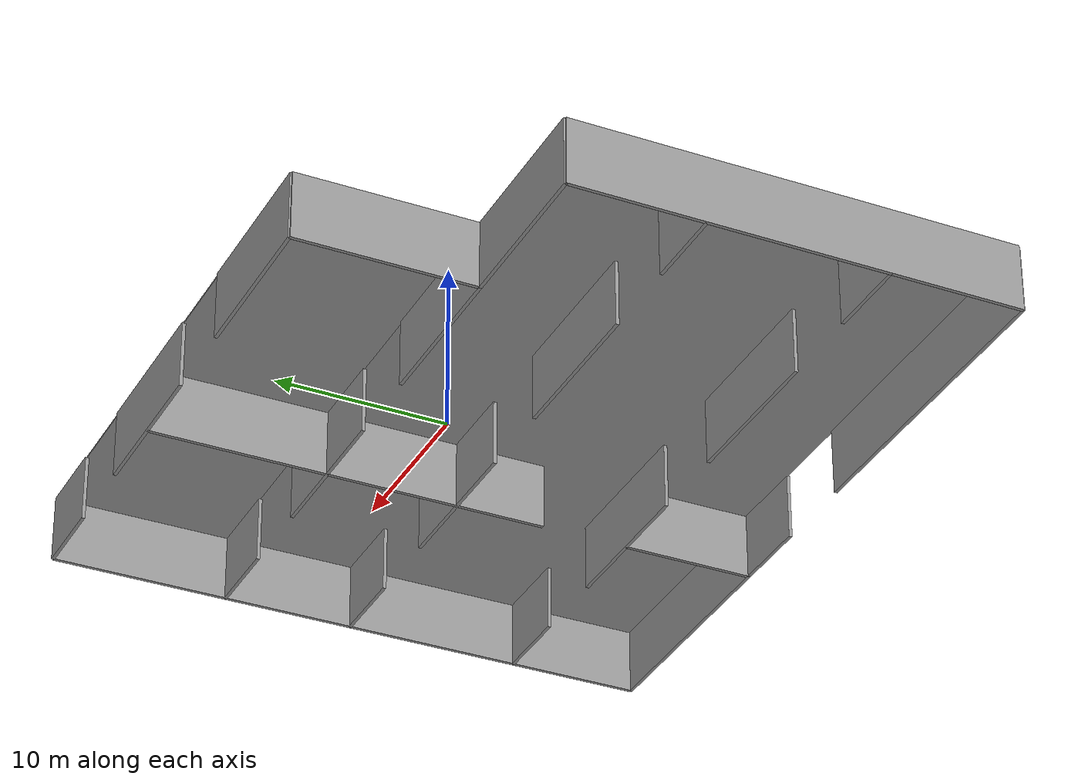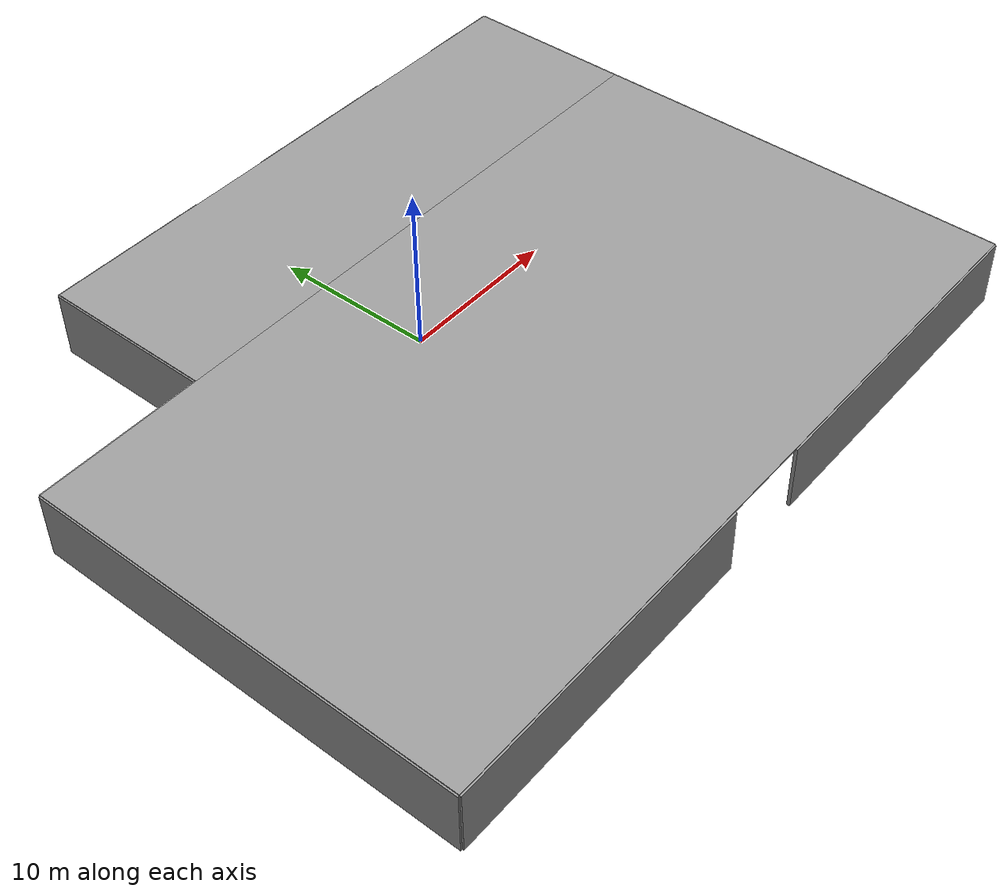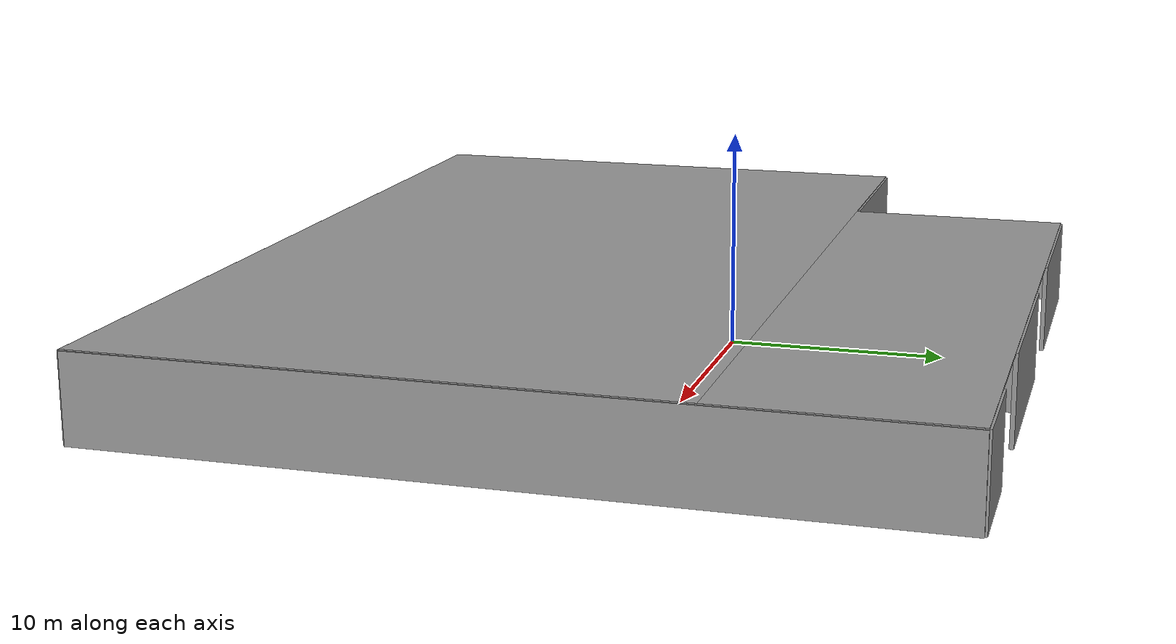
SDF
<?xml version='1.0'?>
<sdf version='1.7'>
  <model name='XiaoHongShanBuild'>
    <link name='link_1'>
      <inertial>
        <mass>1</mass>
        <inertia>
          <ixx>0.166667</ixx>
          <ixy>0</ixy>
          <ixz>0</ixz>
          <iyy>0.166667</iyy>
          <iyz>0</iyz>
          <izz>0.166667</izz>
        </inertia>
        <pose>0 0 0 0 -0 0</pose>
      </inertial>
      <pose>0 0 0 0 -0 0</pose>
      <gravity>1</gravity>
      <self_collide>0</self_collide>
      <kinematic>0</kinematic>
      <enable_wind>0</enable_wind>
      <visual name='ModelPreview_2::link_1::visual_2'>
        <pose>12.5 -22.3 2 0 -0 0</pose>
        <geometry>
          <box>
            <size>20 0.2 4</size>
          </box>
        </geometry>
        <material>
          <lighting>1</lighting>
          <script>
            <uri>file://media/materials/scripts/gazebo.material</uri>
            <name>Gazebo/Gray</name>
          </script>
          <shader type='pixel'>
            <normal_map>__default__</normal_map>
          </shader>
          <ambient>0.3 0.3 0.3 1</ambient>
          <diffuse>0.7 0.7 0.7 1</diffuse>
          <specular>0.01 0.01 0.01 1</specular>
          <emissive>0 0 0 1</emissive>
        </material>
        <transparency>0</transparency>
        <cast_shadows>1</cast_shadows>
      </visual>
      <visual name='ModelPreview_2::link_1::visual_1'>
        <pose>-22.5 -9.25 2 0 -0 0</pose>
        <geometry>
          <box>
            <size>0.2 26.1 4</size>
          </box>
        </geometry>
        <material>
          <lighting>1</lighting>
          <script>
            <uri>file://media/materials/scripts/gazebo.material</uri>
            <name>Gazebo/Gray</name>
          </script>
          <shader type='pixel'>
            <normal_map>__default__</normal_map>
          </shader>
          <ambient>0.3 0.3 0.3 1</ambient>
          <diffuse>0.7 0.7 0.7 1</diffuse>
          <specular>0.01 0.01 0.01 1</specular>
          <emissive>0 0 0 1</emissive>
        </material>
        <transparency>0</transparency>
        <cast_shadows>1</cast_shadows>
      </visual>
      <visual name='ModelPreview_2::link_1::visual_3'>
        <pose>22.5 -4 2 0 -0 0</pose>
        <geometry>
          <box>
            <size>0.2 36.6 4</size>
          </box>
        </geometry>
        <material>
          <lighting>1</lighting>
          <script>
            <uri>file://media/materials/scripts/gazebo.material</uri>
            <name>Gazebo/Gray</name>
          </script>
          <shader type='pixel'>
            <normal_map>__default__</normal_map>
          </shader>
          <ambient>0.3 0.3 0.3 1</ambient>
          <diffuse>0.7 0.7 0.7 1</diffuse>
          <specular>0.01 0.01 0.01 1</specular>
          <emissive>0 0 0 1</emissive>
        </material>
        <transparency>0</transparency>
        <cast_shadows>1</cast_shadows>
      </visual>
      <visual name='ModelPreview_2::link_1::visual_4'>
        <pose>-17.5 3.8 2 0 -0 0</pose>
        <geometry>
          <box>
            <size>10 0.2 4</size>
          </box>
        </geometry>
        <material>
          <lighting>1</lighting>
          <script>
            <uri>file://media/materials/scripts/gazebo.material</uri>
            <name>Gazebo/Gray</name>
          </script>
          <shader type='pixel'>
            <normal_map>__default__</normal_map>
          </shader>
          <ambient>0.3 0.3 0.3 1</ambient>
          <diffuse>0.7 0.7 0.7 1</diffuse>
          <specular>0.01 0.01 0.01 1</specular>
          <emissive>0 0 0 1</emissive>
        </material>
        <transparency>0</transparency>
        <cast_shadows>1</cast_shadows>
      </visual>
      <visual name='ModelPreview_2::link_1::visual_5'>
        <pose>-7.5 14.3 2 0 -0 0</pose>
        <geometry>
          <box>
            <size>10 0.2 4</size>
          </box>
        </geometry>
        <material>
          <lighting>1</lighting>
          <script>
            <uri>file://media/materials/scripts/gazebo.material</uri>
            <name>Gazebo/Gray</name>
          </script>
          <shader type='pixel'>
            <normal_map>__default__</normal_map>
          </shader>
          <ambient>0.3 0.3 0.3 1</ambient>
          <diffuse>0.7 0.7 0.7 1</diffuse>
          <specular>0.01 0.01 0.01 1</specular>
          <emissive>0 0 0 1</emissive>
        </material>
        <transparency>0</transparency>
        <cast_shadows>1</cast_shadows>
      </visual>
      <visual name='ModelPreview_2::link_1::visual_6'>
        <pose>7.5 14.3 2 0 -0 0</pose>
        <geometry>
          <box>
            <size>10 0.2 4</size>
          </box>
        </geometry>
        <material>
          <lighting>1</lighting>
          <script>
            <uri>file://media/materials/scripts/gazebo.material</uri>
            <name>Gazebo/Gray</name>
          </script>
          <shader type='pixel'>
            <normal_map>__default__</normal_map>
          </shader>
          <ambient>0.3 0.3 0.3 1</ambient>
          <diffuse>0.7 0.7 0.7 1</diffuse>
          <specular>0.01 0.01 0.01 1</specular>
          <emissive>0 0 0 1</emissive>
        </material>
        <transparency>0</transparency>
        <cast_shadows>1</cast_shadows>
      </visual>
      <visual name='ModelPreview_2::link_1::visual_7'>
        <pose>20 14.3 2 0 -0 0</pose>
        <geometry>
          <box>
            <size>5 0.2 4</size>
          </box>
        </geometry>
        <material>
          <lighting>1</lighting>
          <script>
            <uri>file://media/materials/scripts/gazebo.material</uri>
            <name>Gazebo/Gray</name>
          </script>
          <shader type='pixel'>
            <normal_map>__default__</normal_map>
          </shader>
          <ambient>0.3 0.3 0.3 1</ambient>
          <diffuse>0.7 0.7 0.7 1</diffuse>
          <specular>0.01 0.01 0.01 1</specular>
          <emissive>0 0 0 1</emissive>
        </material>
        <transparency>0</transparency>
        <cast_shadows>1</cast_shadows>
      </visual>
      <visual name='ModelPreview_2::link_1::visual_8'>
        <pose>-12.6 -22.3 2 0 -0 0</pose>
        <geometry>
          <box>
            <size>19.8 0.2 4</size>
          </box>
        </geometry>
        <material>
          <lighting>1</lighting>
          <script>
            <uri>file://media/materials/scripts/gazebo.material</uri>
            <name>Gazebo/Gray</name>
          </script>
          <shader type='pixel'>
            <normal_map>__default__</normal_map>
          </shader>
          <ambient>0.3 0.3 0.3 1</ambient>
          <diffuse>0.7 0.7 0.7 1</diffuse>
          <specular>0.01 0.01 0.01 1</specular>
          <emissive>0 0 0 1</emissive>
        </material>
        <transparency>0</transparency>
        <cast_shadows>1</cast_shadows>
      </visual>
      <visual name='ModelPreview_2::link_1::visual_9'>
        <pose>7.5 -18.4 2 0 -0 0</pose>
        <geometry>
          <box>
            <size>0.2 7.8 4</size>
          </box>
        </geometry>
        <material>
          <lighting>1</lighting>
          <script>
            <uri>file://media/materials/scripts/gazebo.material</uri>
            <name>Gazebo/Gray</name>
          </script>
          <shader type='pixel'>
            <normal_map>__default__</normal_map>
          </shader>
          <ambient>0.3 0.3 0.3 1</ambient>
          <diffuse>0.7 0.7 0.7 1</diffuse>
          <specular>0.01 0.01 0.01 1</specular>
          <emissive>0 0 0 1</emissive>
        </material>
        <transparency>0</transparency>
        <cast_shadows>1</cast_shadows>
      </visual>
      <visual name='ModelPreview_2::link_1::visual_10'>
        <pose>7.5 2.5 2 0 -0 0</pose>
        <geometry>
          <box>
            <size>0.2 23.6 4</size>
          </box>
        </geometry>
        <material>
          <lighting>1</lighting>
          <script>
            <uri>file://media/materials/scripts/gazebo.material</uri>
            <name>Gazebo/Gray</name>
          </script>
          <shader type='pixel'>
            <normal_map>__default__</normal_map>
          </shader>
          <ambient>0.3 0.3 0.3 1</ambient>
          <diffuse>0.7 0.7 0.7 1</diffuse>
          <specular>0.01 0.01 0.01 1</specular>
          <emissive>0 0 0 1</emissive>
        </material>
        <transparency>0</transparency>
        <cast_shadows>1</cast_shadows>
      </visual>
      <visual name='ModelPreview_2::link_1::visual_11'>
        <pose>-12.5 9.05 2 0 -0 0</pose>
        <geometry>
          <box>
            <size>0.2 10.5 4</size>
          </box>
        </geometry>
        <material>
          <lighting>1</lighting>
          <script>
            <uri>file://media/materials/scripts/gazebo.material</uri>
            <name>Gazebo/Gray</name>
          </script>
          <shader type='pixel'>
            <normal_map>__default__</normal_map>
          </shader>
          <ambient>0.3 0.3 0.3 1</ambient>
          <diffuse>0.7 0.7 0.7 1</diffuse>
          <specular>0.01 0.01 0.01 1</specular>
          <emissive>0 0 0 1</emissive>
        </material>
        <transparency>0</transparency>
        <cast_shadows>1</cast_shadows>
      </visual>
      <visual name='ModelPreview_2::link_1::visual_12'>
        <pose>20 -4 2 0 -0 0</pose>
        <geometry>
          <box>
            <size>5 0.2 4</size>
          </box>
        </geometry>
        <material>
          <lighting>1</lighting>
          <script>
            <uri>file://media/materials/scripts/gazebo.material</uri>
            <name>Gazebo/Gray</name>
          </script>
          <shader type='pixel'>
            <normal_map>__default__</normal_map>
          </shader>
          <ambient>0.3 0.3 0.3 1</ambient>
          <diffuse>0.7 0.7 0.7 1</diffuse>
          <specular>0.01 0.01 0.01 1</specular>
          <emissive>0 0 0 1</emissive>
        </material>
        <transparency>0</transparency>
        <cast_shadows>1</cast_shadows>
      </visual>
      <visual name='ModelPreview_2::link_1::visual_13'>
        <pose>20 -14.5 2 0 -0 0</pose>
        <geometry>
          <box>
            <size>5 0.2 4</size>
          </box>
        </geometry>
        <material>
          <lighting>1</lighting>
          <script>
            <uri>file://media/materials/scripts/gazebo.material</uri>
            <name>Gazebo/Gray</name>
          </script>
          <shader type='pixel'>
            <normal_map>__default__</normal_map>
          </shader>
          <ambient>0.3 0.3 0.3 1</ambient>
          <diffuse>0.7 0.7 0.7 1</diffuse>
          <specular>0.01 0.01 0.01 1</specular>
          <emissive>0 0 0 1</emissive>
        </material>
        <transparency>0</transparency>
        <cast_shadows>1</cast_shadows>
      </visual>
      <visual name='ModelPreview_2::link_1::visual_14'>
        <pose>7.5 3.8 2 0 -0 0</pose>
        <geometry>
          <box>
            <size>10 0.2 4</size>
          </box>
        </geometry>
        <material>
          <lighting>1</lighting>
          <script>
            <uri>file://media/materials/scripts/gazebo.material</uri>
            <name>Gazebo/Gray</name>
          </script>
          <shader type='pixel'>
            <normal_map>__default__</normal_map>
          </shader>
          <ambient>0.3 0.3 0.3 1</ambient>
          <diffuse>0.7 0.7 0.7 1</diffuse>
          <specular>0.01 0.01 0.01 1</specular>
          <emissive>0 0 0 1</emissive>
        </material>
        <transparency>0</transparency>
        <cast_shadows>1</cast_shadows>
      </visual>
      <visual name='ModelPreview_2::link_1::visual_15'>
        <pose>7.5 -4 2 0 -0 0</pose>
        <geometry>
          <box>
            <size>10 0.2 4</size>
          </box>
        </geometry>
        <material>
          <lighting>1</lighting>
          <script>
            <uri>file://media/materials/scripts/gazebo.material</uri>
            <name>Gazebo/Gray</name>
          </script>
          <shader type='pixel'>
            <normal_map>__default__</normal_map>
          </shader>
          <ambient>0.3 0.3 0.3 1</ambient>
          <diffuse>0.7 0.7 0.7 1</diffuse>
          <specular>0.01 0.01 0.01 1</specular>
          <emissive>0 0 0 1</emissive>
        </material>
        <transparency>0</transparency>
        <cast_shadows>1</cast_shadows>
      </visual>
      <visual name='ModelPreview_2::link_1::visual_16'>
        <pose>-7.5 3.8 2 0 -0 0</pose>
        <geometry>
          <box>
            <size>10 0.2 4</size>
          </box>
        </geometry>
        <material>
          <lighting>1</lighting>
          <script>
            <uri>file://media/materials/scripts/gazebo.material</uri>
            <name>Gazebo/Gray</name>
          </script>
          <shader type='pixel'>
            <normal_map>__default__</normal_map>
          </shader>
          <ambient>0.3 0.3 0.3 1</ambient>
          <diffuse>0.7 0.7 0.7 1</diffuse>
          <specular>0.01 0.01 0.01 1</specular>
          <emissive>0 0 0 1</emissive>
        </material>
        <transparency>0</transparency>
        <cast_shadows>1</cast_shadows>
      </visual>
      <visual name='ModelPreview_2::link_1::visual_17'>
        <pose>-20 -4 2 0 -0 0</pose>
        <geometry>
          <box>
            <size>5 0.2 4</size>
          </box>
        </geometry>
        <material>
          <lighting>1</lighting>
          <script>
            <uri>file://media/materials/scripts/gazebo.material</uri>
            <name>Gazebo/Gray</name>
          </script>
          <shader type='pixel'>
            <normal_map>__default__</normal_map>
          </shader>
          <ambient>0.3 0.3 0.3 1</ambient>
          <diffuse>0.7 0.7 0.7 1</diffuse>
          <specular>0.01 0.01 0.01 1</specular>
          <emissive>0 0 0 1</emissive>
        </material>
        <transparency>0</transparency>
        <cast_shadows>1</cast_shadows>
      </visual>
      <visual name='ModelPreview_2::link_1::visual_18'>
        <pose>-20 -14.5 2 0 -0 0</pose>
        <geometry>
          <box>
            <size>5 0.2 4</size>
          </box>
        </geometry>
        <material>
          <lighting>1</lighting>
          <script>
            <uri>file://media/materials/scripts/gazebo.material</uri>
            <name>Gazebo/Gray</name>
          </script>
          <shader type='pixel'>
            <normal_map>__default__</normal_map>
          </shader>
          <ambient>0.3 0.3 0.3 1</ambient>
          <diffuse>0.7 0.7 0.7 1</diffuse>
          <specular>0.01 0.01 0.01 1</specular>
          <emissive>0 0 0 1</emissive>
        </material>
        <transparency>0</transparency>
        <cast_shadows>1</cast_shadows>
      </visual>
      <visual name='ModelPreview_2::link_1::visual_19'>
        <pose>-7.5 -14.5 2 0 -0 0</pose>
        <geometry>
          <box>
            <size>10 0.2 4</size>
          </box>
        </geometry>
        <material>
          <lighting>1</lighting>
          <script>
            <uri>file://media/materials/scripts/gazebo.material</uri>
            <name>Gazebo/Gray</name>
          </script>
          <shader type='pixel'>
            <normal_map>__default__</normal_map>
          </shader>
          <ambient>0.3 0.3 0.3 1</ambient>
          <diffuse>0.7 0.7 0.7 1</diffuse>
          <specular>0.01 0.01 0.01 1</specular>
          <emissive>0 0 0 1</emissive>
        </material>
        <transparency>0</transparency>
        <cast_shadows>1</cast_shadows>
      </visual>
      <visual name='ModelPreview_2::link_1::visual_20'>
        <pose>-7.5 -4 2 0 -0 0</pose>
        <geometry>
          <box>
            <size>10 0.2 4</size>
          </box>
        </geometry>
        <material>
          <lighting>1</lighting>
          <script>
            <uri>file://media/materials/scripts/gazebo.material</uri>
            <name>Gazebo/Gray</name>
          </script>
          <shader type='pixel'>
            <normal_map>__default__</normal_map>
          </shader>
          <ambient>0.3 0.3 0.3 1</ambient>
          <diffuse>0.7 0.7 0.7 1</diffuse>
          <specular>0.01 0.01 0.01 1</specular>
          <emissive>0 0 0 1</emissive>
        </material>
        <transparency>0</transparency>
        <cast_shadows>1</cast_shadows>
      </visual>
      <visual name='ModelPreview_2::link_1::visual_23'>
        <pose>5 9.05 4 0 -0 0</pose>
        <geometry>
          <box>
            <size>35 10.5 0.1</size>
          </box>
        </geometry>
        <material>
          <lighting>1</lighting>
          <script>
            <uri>file://media/materials/scripts/gazebo.material</uri>
            <name>Gazebo/Gray</name>
          </script>
          <shader type='pixel'>
            <normal_map>__default__</normal_map>
          </shader>
          <ambient>0.3 0.3 0.3 1</ambient>
          <diffuse>0.7 0.7 0.7 1</diffuse>
          <specular>0.01 0.01 0.01 1</specular>
          <emissive>0 0 0 1</emissive>
        </material>
        <transparency>0</transparency>
        <cast_shadows>1</cast_shadows>
      </visual>
      <visual name='ModelPreview_2::link_1::visual_21'>
        <pose>7.5 -14.5 2 0 -0 0</pose>
        <geometry>
          <box>
            <size>10 0.2 4</size>
          </box>
        </geometry>
        <material>
          <lighting>1</lighting>
          <script>
            <uri>file://media/materials/scripts/gazebo.material</uri>
            <name>Gazebo/Gray</name>
          </script>
          <shader type='pixel'>
            <normal_map>__default__</normal_map>
          </shader>
          <ambient>0.3 0.3 0.3 1</ambient>
          <diffuse>0.7 0.7 0.7 1</diffuse>
          <specular>0.01 0.01 0.01 1</specular>
          <emissive>0 0 0 1</emissive>
        </material>
        <transparency>0</transparency>
        <cast_shadows>1</cast_shadows>
      </visual>
      <visual name='ModelPreview_2::link_1::visual_22'>
        <pose>0 -9.25 4 0 -0 0</pose>
        <geometry>
          <box>
            <size>45 26.1 0.1</size>
          </box>
        </geometry>
        <material>
          <lighting>1</lighting>
          <script>
            <uri>file://media/materials/scripts/gazebo.material</uri>
            <name>Gazebo/Gray</name>
          </script>
          <shader type='pixel'>
            <normal_map>__default__</normal_map>
          </shader>
          <ambient>0.3 0.3 0.3 1</ambient>
          <diffuse>0.7 0.7 0.7 1</diffuse>
          <specular>0.01 0.01 0.01 1</specular>
          <emissive>0 0 0 1</emissive>
        </material>
        <transparency>0</transparency>
        <cast_shadows>1</cast_shadows>
      </visual>
      <visual name='visual'>
        <pose>20 3.8 2 0 -0 0</pose>
        <geometry>
          <box>
            <size>5 0.2 4</size>
          </box>
        </geometry>
        <material>
          <lighting>1</lighting>
          <script>
            <uri>file://media/materials/scripts/gazebo.material</uri>
            <name>Gazebo/Gray</name>
          </script>
          <shader type='pixel'>
            <normal_map>__default__</normal_map>
          </shader>
          <ambient>0.3 0.3 0.3 1</ambient>
          <diffuse>0.7 0.7 0.7 1</diffuse>
          <specular>0.01 0.01 0.01 1</specular>
          <emissive>0 0 0 1</emissive>
        </material>
        <transparency>0</transparency>
        <cast_shadows>1</cast_shadows>
      </visual>
      <collision name='collision_23'>
        <laser_retro>0</laser_retro>
        <max_contacts>10</max_contacts>
        <pose>5 9.05 4 0 -0 0</pose>
        <geometry>
          <box>
            <size>35 10.5 0.1</size>
          </box>
        </geometry>
        <surface>
          <friction>
            <ode>
              <mu>1</mu>
              <mu2>1</mu2>
              <fdir1>0 0 0</fdir1>
              <slip1>0</slip1>
              <slip2>0</slip2>
            </ode>
            <torsional>
              <coefficient>1</coefficient>
              <patch_radius>0</patch_radius>
              <surface_radius>0</surface_radius>
              <use_patch_radius>1</use_patch_radius>
              <ode>
                <slip>0</slip>
              </ode>
            </torsional>
          </friction>
          <bounce>
            <restitution_coefficient>0</restitution_coefficient>
            <threshold>1e+06</threshold>
          </bounce>
          <contact>
            <collide_without_contact>0</collide_without_contact>
            <collide_without_contact_bitmask>1</collide_without_contact_bitmask>
            <collide_bitmask>1</collide_bitmask>
            <ode>
              <soft_cfm>0</soft_cfm>
              <soft_erp>0.2</soft_erp>
              <kp>1e+13</kp>
              <kd>1</kd>
              <max_vel>0.01</max_vel>
              <min_depth>0</min_depth>
            </ode>
            <bullet>
              <split_impulse>1</split_impulse>
              <split_impulse_penetration_threshold>-0.01</split_impulse_penetration_threshold>
              <soft_cfm>0</soft_cfm>
              <soft_erp>0.2</soft_erp>
              <kp>1e+13</kp>
              <kd>1</kd>
            </bullet>
          </contact>
        </surface>
      </collision>
      <collision name='collision_1'>
        <laser_retro>0</laser_retro>
        <max_contacts>10</max_contacts>
        <pose>-22.5 -9.25 2 0 -0 0</pose>
        <geometry>
          <box>
            <size>0.2 26.1 4</size>
          </box>
        </geometry>
        <surface>
          <friction>
            <ode>
              <mu>1</mu>
              <mu2>1</mu2>
              <fdir1>0 0 0</fdir1>
              <slip1>0</slip1>
              <slip2>0</slip2>
            </ode>
            <torsional>
              <coefficient>1</coefficient>
              <patch_radius>0</patch_radius>
              <surface_radius>0</surface_radius>
              <use_patch_radius>1</use_patch_radius>
              <ode>
                <slip>0</slip>
              </ode>
            </torsional>
          </friction>
          <bounce>
            <restitution_coefficient>0</restitution_coefficient>
            <threshold>1e+06</threshold>
          </bounce>
          <contact>
            <collide_without_contact>0</collide_without_contact>
            <collide_without_contact_bitmask>1</collide_without_contact_bitmask>
            <collide_bitmask>1</collide_bitmask>
            <ode>
              <soft_cfm>0</soft_cfm>
              <soft_erp>0.2</soft_erp>
              <kp>1e+13</kp>
              <kd>1</kd>
              <max_vel>0.01</max_vel>
              <min_depth>0</min_depth>
            </ode>
            <bullet>
              <split_impulse>1</split_impulse>
              <split_impulse_penetration_threshold>-0.01</split_impulse_penetration_threshold>
              <soft_cfm>0</soft_cfm>
              <soft_erp>0.2</soft_erp>
              <kp>1e+13</kp>
              <kd>1</kd>
            </bullet>
          </contact>
        </surface>
      </collision>
      <collision name='collision_4'>
        <laser_retro>0</laser_retro>
        <max_contacts>10</max_contacts>
        <pose>-17.5 3.8 2 0 -0 0</pose>
        <geometry>
          <box>
            <size>10 0.2 4</size>
          </box>
        </geometry>
        <surface>
          <friction>
            <ode>
              <mu>1</mu>
              <mu2>1</mu2>
              <fdir1>0 0 0</fdir1>
              <slip1>0</slip1>
              <slip2>0</slip2>
            </ode>
            <torsional>
              <coefficient>1</coefficient>
              <patch_radius>0</patch_radius>
              <surface_radius>0</surface_radius>
              <use_patch_radius>1</use_patch_radius>
              <ode>
                <slip>0</slip>
              </ode>
            </torsional>
          </friction>
          <bounce>
            <restitution_coefficient>0</restitution_coefficient>
            <threshold>1e+06</threshold>
          </bounce>
          <contact>
            <collide_without_contact>0</collide_without_contact>
            <collide_without_contact_bitmask>1</collide_without_contact_bitmask>
            <collide_bitmask>1</collide_bitmask>
            <ode>
              <soft_cfm>0</soft_cfm>
              <soft_erp>0.2</soft_erp>
              <kp>1e+13</kp>
              <kd>1</kd>
              <max_vel>0.01</max_vel>
              <min_depth>0</min_depth>
            </ode>
            <bullet>
              <split_impulse>1</split_impulse>
              <split_impulse_penetration_threshold>-0.01</split_impulse_penetration_threshold>
              <soft_cfm>0</soft_cfm>
              <soft_erp>0.2</soft_erp>
              <kp>1e+13</kp>
              <kd>1</kd>
            </bullet>
          </contact>
        </surface>
      </collision>
      <collision name='collision_5'>
        <laser_retro>0</laser_retro>
        <max_contacts>10</max_contacts>
        <pose>-7.5 14.3 2 0 -0 0</pose>
        <geometry>
          <box>
            <size>10 0.2 4</size>
          </box>
        </geometry>
        <surface>
          <friction>
            <ode>
              <mu>1</mu>
              <mu2>1</mu2>
              <fdir1>0 0 0</fdir1>
              <slip1>0</slip1>
              <slip2>0</slip2>
            </ode>
            <torsional>
              <coefficient>1</coefficient>
              <patch_radius>0</patch_radius>
              <surface_radius>0</surface_radius>
              <use_patch_radius>1</use_patch_radius>
              <ode>
                <slip>0</slip>
              </ode>
            </torsional>
          </friction>
          <bounce>
            <restitution_coefficient>0</restitution_coefficient>
            <threshold>1e+06</threshold>
          </bounce>
          <contact>
            <collide_without_contact>0</collide_without_contact>
            <collide_without_contact_bitmask>1</collide_without_contact_bitmask>
            <collide_bitmask>1</collide_bitmask>
            <ode>
              <soft_cfm>0</soft_cfm>
              <soft_erp>0.2</soft_erp>
              <kp>1e+13</kp>
              <kd>1</kd>
              <max_vel>0.01</max_vel>
              <min_depth>0</min_depth>
            </ode>
            <bullet>
              <split_impulse>1</split_impulse>
              <split_impulse_penetration_threshold>-0.01</split_impulse_penetration_threshold>
              <soft_cfm>0</soft_cfm>
              <soft_erp>0.2</soft_erp>
              <kp>1e+13</kp>
              <kd>1</kd>
            </bullet>
          </contact>
        </surface>
      </collision>
      <collision name='collision_2'>
        <laser_retro>0</laser_retro>
        <max_contacts>10</max_contacts>
        <pose>12.5 -22.3 2 0 -0 0</pose>
        <geometry>
          <box>
            <size>20 0.2 4</size>
          </box>
        </geometry>
        <surface>
          <friction>
            <ode>
              <mu>1</mu>
              <mu2>1</mu2>
              <fdir1>0 0 0</fdir1>
              <slip1>0</slip1>
              <slip2>0</slip2>
            </ode>
            <torsional>
              <coefficient>1</coefficient>
              <patch_radius>0</patch_radius>
              <surface_radius>0</surface_radius>
              <use_patch_radius>1</use_patch_radius>
              <ode>
                <slip>0</slip>
              </ode>
            </torsional>
          </friction>
          <bounce>
            <restitution_coefficient>0</restitution_coefficient>
            <threshold>1e+06</threshold>
          </bounce>
          <contact>
            <collide_without_contact>0</collide_without_contact>
            <collide_without_contact_bitmask>1</collide_without_contact_bitmask>
            <collide_bitmask>1</collide_bitmask>
            <ode>
              <soft_cfm>0</soft_cfm>
              <soft_erp>0.2</soft_erp>
              <kp>1e+13</kp>
              <kd>1</kd>
              <max_vel>0.01</max_vel>
              <min_depth>0</min_depth>
            </ode>
            <bullet>
              <split_impulse>1</split_impulse>
              <split_impulse_penetration_threshold>-0.01</split_impulse_penetration_threshold>
              <soft_cfm>0</soft_cfm>
              <soft_erp>0.2</soft_erp>
              <kp>1e+13</kp>
              <kd>1</kd>
            </bullet>
          </contact>
        </surface>
      </collision>
      <collision name='collision_3'>
        <laser_retro>0</laser_retro>
        <max_contacts>10</max_contacts>
        <pose>22.5 -4 2 0 -0 0</pose>
        <geometry>
          <box>
            <size>0.2 36.6 4</size>
          </box>
        </geometry>
        <surface>
          <friction>
            <ode>
              <mu>1</mu>
              <mu2>1</mu2>
              <fdir1>0 0 0</fdir1>
              <slip1>0</slip1>
              <slip2>0</slip2>
            </ode>
            <torsional>
              <coefficient>1</coefficient>
              <patch_radius>0</patch_radius>
              <surface_radius>0</surface_radius>
              <use_patch_radius>1</use_patch_radius>
              <ode>
                <slip>0</slip>
              </ode>
            </torsional>
          </friction>
          <bounce>
            <restitution_coefficient>0</restitution_coefficient>
            <threshold>1e+06</threshold>
          </bounce>
          <contact>
            <collide_without_contact>0</collide_without_contact>
            <collide_without_contact_bitmask>1</collide_without_contact_bitmask>
            <collide_bitmask>1</collide_bitmask>
            <ode>
              <soft_cfm>0</soft_cfm>
              <soft_erp>0.2</soft_erp>
              <kp>1e+13</kp>
              <kd>1</kd>
              <max_vel>0.01</max_vel>
              <min_depth>0</min_depth>
            </ode>
            <bullet>
              <split_impulse>1</split_impulse>
              <split_impulse_penetration_threshold>-0.01</split_impulse_penetration_threshold>
              <soft_cfm>0</soft_cfm>
              <soft_erp>0.2</soft_erp>
              <kp>1e+13</kp>
              <kd>1</kd>
            </bullet>
          </contact>
        </surface>
      </collision>
      <collision name='collision_7'>
        <laser_retro>0</laser_retro>
        <max_contacts>10</max_contacts>
        <pose>20 14.3 2 0 -0 0</pose>
        <geometry>
          <box>
            <size>5 0.2 4</size>
          </box>
        </geometry>
        <surface>
          <friction>
            <ode>
              <mu>1</mu>
              <mu2>1</mu2>
              <fdir1>0 0 0</fdir1>
              <slip1>0</slip1>
              <slip2>0</slip2>
            </ode>
            <torsional>
              <coefficient>1</coefficient>
              <patch_radius>0</patch_radius>
              <surface_radius>0</surface_radius>
              <use_patch_radius>1</use_patch_radius>
              <ode>
                <slip>0</slip>
              </ode>
            </torsional>
          </friction>
          <bounce>
            <restitution_coefficient>0</restitution_coefficient>
            <threshold>1e+06</threshold>
          </bounce>
          <contact>
            <collide_without_contact>0</collide_without_contact>
            <collide_without_contact_bitmask>1</collide_without_contact_bitmask>
            <collide_bitmask>1</collide_bitmask>
            <ode>
              <soft_cfm>0</soft_cfm>
              <soft_erp>0.2</soft_erp>
              <kp>1e+13</kp>
              <kd>1</kd>
              <max_vel>0.01</max_vel>
              <min_depth>0</min_depth>
            </ode>
            <bullet>
              <split_impulse>1</split_impulse>
              <split_impulse_penetration_threshold>-0.01</split_impulse_penetration_threshold>
              <soft_cfm>0</soft_cfm>
              <soft_erp>0.2</soft_erp>
              <kp>1e+13</kp>
              <kd>1</kd>
            </bullet>
          </contact>
        </surface>
      </collision>
      <collision name='collision_8'>
        <laser_retro>0</laser_retro>
        <max_contacts>10</max_contacts>
        <pose>-12.6 -22.3 2 0 -0 0</pose>
        <geometry>
          <box>
            <size>19.8 0.2 4</size>
          </box>
        </geometry>
        <surface>
          <friction>
            <ode>
              <mu>1</mu>
              <mu2>1</mu2>
              <fdir1>0 0 0</fdir1>
              <slip1>0</slip1>
              <slip2>0</slip2>
            </ode>
            <torsional>
              <coefficient>1</coefficient>
              <patch_radius>0</patch_radius>
              <surface_radius>0</surface_radius>
              <use_patch_radius>1</use_patch_radius>
              <ode>
                <slip>0</slip>
              </ode>
            </torsional>
          </friction>
          <bounce>
            <restitution_coefficient>0</restitution_coefficient>
            <threshold>1e+06</threshold>
          </bounce>
          <contact>
            <collide_without_contact>0</collide_without_contact>
            <collide_without_contact_bitmask>1</collide_without_contact_bitmask>
            <collide_bitmask>1</collide_bitmask>
            <ode>
              <soft_cfm>0</soft_cfm>
              <soft_erp>0.2</soft_erp>
              <kp>1e+13</kp>
              <kd>1</kd>
              <max_vel>0.01</max_vel>
              <min_depth>0</min_depth>
            </ode>
            <bullet>
              <split_impulse>1</split_impulse>
              <split_impulse_penetration_threshold>-0.01</split_impulse_penetration_threshold>
              <soft_cfm>0</soft_cfm>
              <soft_erp>0.2</soft_erp>
              <kp>1e+13</kp>
              <kd>1</kd>
            </bullet>
          </contact>
        </surface>
      </collision>
      <collision name='collision_6'>
        <laser_retro>0</laser_retro>
        <max_contacts>10</max_contacts>
        <pose>7.5 14.3 2 0 -0 0</pose>
        <geometry>
          <box>
            <size>10 0.2 4</size>
          </box>
        </geometry>
        <surface>
          <friction>
            <ode>
              <mu>1</mu>
              <mu2>1</mu2>
              <fdir1>0 0 0</fdir1>
              <slip1>0</slip1>
              <slip2>0</slip2>
            </ode>
            <torsional>
              <coefficient>1</coefficient>
              <patch_radius>0</patch_radius>
              <surface_radius>0</surface_radius>
              <use_patch_radius>1</use_patch_radius>
              <ode>
                <slip>0</slip>
              </ode>
            </torsional>
          </friction>
          <bounce>
            <restitution_coefficient>0</restitution_coefficient>
            <threshold>1e+06</threshold>
          </bounce>
          <contact>
            <collide_without_contact>0</collide_without_contact>
            <collide_without_contact_bitmask>1</collide_without_contact_bitmask>
            <collide_bitmask>1</collide_bitmask>
            <ode>
              <soft_cfm>0</soft_cfm>
              <soft_erp>0.2</soft_erp>
              <kp>1e+13</kp>
              <kd>1</kd>
              <max_vel>0.01</max_vel>
              <min_depth>0</min_depth>
            </ode>
            <bullet>
              <split_impulse>1</split_impulse>
              <split_impulse_penetration_threshold>-0.01</split_impulse_penetration_threshold>
              <soft_cfm>0</soft_cfm>
              <soft_erp>0.2</soft_erp>
              <kp>1e+13</kp>
              <kd>1</kd>
            </bullet>
          </contact>
        </surface>
      </collision>
      <collision name='collision_10'>
        <laser_retro>0</laser_retro>
        <max_contacts>10</max_contacts>
        <pose>7.5 2.5 2 0 -0 0</pose>
        <geometry>
          <box>
            <size>0.2 23.6 4</size>
          </box>
        </geometry>
        <surface>
          <friction>
            <ode>
              <mu>1</mu>
              <mu2>1</mu2>
              <fdir1>0 0 0</fdir1>
              <slip1>0</slip1>
              <slip2>0</slip2>
            </ode>
            <torsional>
              <coefficient>1</coefficient>
              <patch_radius>0</patch_radius>
              <surface_radius>0</surface_radius>
              <use_patch_radius>1</use_patch_radius>
              <ode>
                <slip>0</slip>
              </ode>
            </torsional>
          </friction>
          <bounce>
            <restitution_coefficient>0</restitution_coefficient>
            <threshold>1e+06</threshold>
          </bounce>
          <contact>
            <collide_without_contact>0</collide_without_contact>
            <collide_without_contact_bitmask>1</collide_without_contact_bitmask>
            <collide_bitmask>1</collide_bitmask>
            <ode>
              <soft_cfm>0</soft_cfm>
              <soft_erp>0.2</soft_erp>
              <kp>1e+13</kp>
              <kd>1</kd>
              <max_vel>0.01</max_vel>
              <min_depth>0</min_depth>
            </ode>
            <bullet>
              <split_impulse>1</split_impulse>
              <split_impulse_penetration_threshold>-0.01</split_impulse_penetration_threshold>
              <soft_cfm>0</soft_cfm>
              <soft_erp>0.2</soft_erp>
              <kp>1e+13</kp>
              <kd>1</kd>
            </bullet>
          </contact>
        </surface>
      </collision>
      <collision name='collision_11'>
        <laser_retro>0</laser_retro>
        <max_contacts>10</max_contacts>
        <pose>-12.5 9.05 2 0 -0 0</pose>
        <geometry>
          <box>
            <size>0.2 10.5 4</size>
          </box>
        </geometry>
        <surface>
          <friction>
            <ode>
              <mu>1</mu>
              <mu2>1</mu2>
              <fdir1>0 0 0</fdir1>
              <slip1>0</slip1>
              <slip2>0</slip2>
            </ode>
            <torsional>
              <coefficient>1</coefficient>
              <patch_radius>0</patch_radius>
              <surface_radius>0</surface_radius>
              <use_patch_radius>1</use_patch_radius>
              <ode>
                <slip>0</slip>
              </ode>
            </torsional>
          </friction>
          <bounce>
            <restitution_coefficient>0</restitution_coefficient>
            <threshold>1e+06</threshold>
          </bounce>
          <contact>
            <collide_without_contact>0</collide_without_contact>
            <collide_without_contact_bitmask>1</collide_without_contact_bitmask>
            <collide_bitmask>1</collide_bitmask>
            <ode>
              <soft_cfm>0</soft_cfm>
              <soft_erp>0.2</soft_erp>
              <kp>1e+13</kp>
              <kd>1</kd>
              <max_vel>0.01</max_vel>
              <min_depth>0</min_depth>
            </ode>
            <bullet>
              <split_impulse>1</split_impulse>
              <split_impulse_penetration_threshold>-0.01</split_impulse_penetration_threshold>
              <soft_cfm>0</soft_cfm>
              <soft_erp>0.2</soft_erp>
              <kp>1e+13</kp>
              <kd>1</kd>
            </bullet>
          </contact>
        </surface>
      </collision>
      <collision name='collision_9'>
        <laser_retro>0</laser_retro>
        <max_contacts>10</max_contacts>
        <pose>7.5 -18.4 2 0 -0 0</pose>
        <geometry>
          <box>
            <size>0.2 7.8 4</size>
          </box>
        </geometry>
        <surface>
          <friction>
            <ode>
              <mu>1</mu>
              <mu2>1</mu2>
              <fdir1>0 0 0</fdir1>
              <slip1>0</slip1>
              <slip2>0</slip2>
            </ode>
            <torsional>
              <coefficient>1</coefficient>
              <patch_radius>0</patch_radius>
              <surface_radius>0</surface_radius>
              <use_patch_radius>1</use_patch_radius>
              <ode>
                <slip>0</slip>
              </ode>
            </torsional>
          </friction>
          <bounce>
            <restitution_coefficient>0</restitution_coefficient>
            <threshold>1e+06</threshold>
          </bounce>
          <contact>
            <collide_without_contact>0</collide_without_contact>
            <collide_without_contact_bitmask>1</collide_without_contact_bitmask>
            <collide_bitmask>1</collide_bitmask>
            <ode>
              <soft_cfm>0</soft_cfm>
              <soft_erp>0.2</soft_erp>
              <kp>1e+13</kp>
              <kd>1</kd>
              <max_vel>0.01</max_vel>
              <min_depth>0</min_depth>
            </ode>
            <bullet>
              <split_impulse>1</split_impulse>
              <split_impulse_penetration_threshold>-0.01</split_impulse_penetration_threshold>
              <soft_cfm>0</soft_cfm>
              <soft_erp>0.2</soft_erp>
              <kp>1e+13</kp>
              <kd>1</kd>
            </bullet>
          </contact>
        </surface>
      </collision>
      <collision name='collision_15'>
        <laser_retro>0</laser_retro>
        <max_contacts>10</max_contacts>
        <pose>7.5 -4 2 0 -0 0</pose>
        <geometry>
          <box>
            <size>10 0.2 4</size>
          </box>
        </geometry>
        <surface>
          <friction>
            <ode>
              <mu>1</mu>
              <mu2>1</mu2>
              <fdir1>0 0 0</fdir1>
              <slip1>0</slip1>
              <slip2>0</slip2>
            </ode>
            <torsional>
              <coefficient>1</coefficient>
              <patch_radius>0</patch_radius>
              <surface_radius>0</surface_radius>
              <use_patch_radius>1</use_patch_radius>
              <ode>
                <slip>0</slip>
              </ode>
            </torsional>
          </friction>
          <bounce>
            <restitution_coefficient>0</restitution_coefficient>
            <threshold>1e+06</threshold>
          </bounce>
          <contact>
            <collide_without_contact>0</collide_without_contact>
            <collide_without_contact_bitmask>1</collide_without_contact_bitmask>
            <collide_bitmask>1</collide_bitmask>
            <ode>
              <soft_cfm>0</soft_cfm>
              <soft_erp>0.2</soft_erp>
              <kp>1e+13</kp>
              <kd>1</kd>
              <max_vel>0.01</max_vel>
              <min_depth>0</min_depth>
            </ode>
            <bullet>
              <split_impulse>1</split_impulse>
              <split_impulse_penetration_threshold>-0.01</split_impulse_penetration_threshold>
              <soft_cfm>0</soft_cfm>
              <soft_erp>0.2</soft_erp>
              <kp>1e+13</kp>
              <kd>1</kd>
            </bullet>
          </contact>
        </surface>
      </collision>
      <collision name='collision_12'>
        <laser_retro>0</laser_retro>
        <max_contacts>10</max_contacts>
        <pose>20 -4 2 0 -0 0</pose>
        <geometry>
          <box>
            <size>5 0.2 4</size>
          </box>
        </geometry>
        <surface>
          <friction>
            <ode>
              <mu>1</mu>
              <mu2>1</mu2>
              <fdir1>0 0 0</fdir1>
              <slip1>0</slip1>
              <slip2>0</slip2>
            </ode>
            <torsional>
              <coefficient>1</coefficient>
              <patch_radius>0</patch_radius>
              <surface_radius>0</surface_radius>
              <use_patch_radius>1</use_patch_radius>
              <ode>
                <slip>0</slip>
              </ode>
            </torsional>
          </friction>
          <bounce>
            <restitution_coefficient>0</restitution_coefficient>
            <threshold>1e+06</threshold>
          </bounce>
          <contact>
            <collide_without_contact>0</collide_without_contact>
            <collide_without_contact_bitmask>1</collide_without_contact_bitmask>
            <collide_bitmask>1</collide_bitmask>
            <ode>
              <soft_cfm>0</soft_cfm>
              <soft_erp>0.2</soft_erp>
              <kp>1e+13</kp>
              <kd>1</kd>
              <max_vel>0.01</max_vel>
              <min_depth>0</min_depth>
            </ode>
            <bullet>
              <split_impulse>1</split_impulse>
              <split_impulse_penetration_threshold>-0.01</split_impulse_penetration_threshold>
              <soft_cfm>0</soft_cfm>
              <soft_erp>0.2</soft_erp>
              <kp>1e+13</kp>
              <kd>1</kd>
            </bullet>
          </contact>
        </surface>
      </collision>
      <collision name='collision_13'>
        <laser_retro>0</laser_retro>
        <max_contacts>10</max_contacts>
        <pose>20 -14.5 2 0 -0 0</pose>
        <geometry>
          <box>
            <size>5 0.2 4</size>
          </box>
        </geometry>
        <surface>
          <friction>
            <ode>
              <mu>1</mu>
              <mu2>1</mu2>
              <fdir1>0 0 0</fdir1>
              <slip1>0</slip1>
              <slip2>0</slip2>
            </ode>
            <torsional>
              <coefficient>1</coefficient>
              <patch_radius>0</patch_radius>
              <surface_radius>0</surface_radius>
              <use_patch_radius>1</use_patch_radius>
              <ode>
                <slip>0</slip>
              </ode>
            </torsional>
          </friction>
          <bounce>
            <restitution_coefficient>0</restitution_coefficient>
            <threshold>1e+06</threshold>
          </bounce>
          <contact>
            <collide_without_contact>0</collide_without_contact>
            <collide_without_contact_bitmask>1</collide_without_contact_bitmask>
            <collide_bitmask>1</collide_bitmask>
            <ode>
              <soft_cfm>0</soft_cfm>
              <soft_erp>0.2</soft_erp>
              <kp>1e+13</kp>
              <kd>1</kd>
              <max_vel>0.01</max_vel>
              <min_depth>0</min_depth>
            </ode>
            <bullet>
              <split_impulse>1</split_impulse>
              <split_impulse_penetration_threshold>-0.01</split_impulse_penetration_threshold>
              <soft_cfm>0</soft_cfm>
              <soft_erp>0.2</soft_erp>
              <kp>1e+13</kp>
              <kd>1</kd>
            </bullet>
          </contact>
        </surface>
      </collision>
      <collision name='collision_14'>
        <laser_retro>0</laser_retro>
        <max_contacts>10</max_contacts>
        <pose>7.5 3.8 2 0 -0 0</pose>
        <geometry>
          <box>
            <size>10 0.2 4</size>
          </box>
        </geometry>
        <surface>
          <friction>
            <ode>
              <mu>1</mu>
              <mu2>1</mu2>
              <fdir1>0 0 0</fdir1>
              <slip1>0</slip1>
              <slip2>0</slip2>
            </ode>
            <torsional>
              <coefficient>1</coefficient>
              <patch_radius>0</patch_radius>
              <surface_radius>0</surface_radius>
              <use_patch_radius>1</use_patch_radius>
              <ode>
                <slip>0</slip>
              </ode>
            </torsional>
          </friction>
          <bounce>
            <restitution_coefficient>0</restitution_coefficient>
            <threshold>1e+06</threshold>
          </bounce>
          <contact>
            <collide_without_contact>0</collide_without_contact>
            <collide_without_contact_bitmask>1</collide_without_contact_bitmask>
            <collide_bitmask>1</collide_bitmask>
            <ode>
              <soft_cfm>0</soft_cfm>
              <soft_erp>0.2</soft_erp>
              <kp>1e+13</kp>
              <kd>1</kd>
              <max_vel>0.01</max_vel>
              <min_depth>0</min_depth>
            </ode>
            <bullet>
              <split_impulse>1</split_impulse>
              <split_impulse_penetration_threshold>-0.01</split_impulse_penetration_threshold>
              <soft_cfm>0</soft_cfm>
              <soft_erp>0.2</soft_erp>
              <kp>1e+13</kp>
              <kd>1</kd>
            </bullet>
          </contact>
        </surface>
      </collision>
      <collision name='collision_16'>
        <laser_retro>0</laser_retro>
        <max_contacts>10</max_contacts>
        <pose>-7.5 3.8 2 0 -0 0</pose>
        <geometry>
          <box>
            <size>10 0.2 4</size>
          </box>
        </geometry>
        <surface>
          <friction>
            <ode>
              <mu>1</mu>
              <mu2>1</mu2>
              <fdir1>0 0 0</fdir1>
              <slip1>0</slip1>
              <slip2>0</slip2>
            </ode>
            <torsional>
              <coefficient>1</coefficient>
              <patch_radius>0</patch_radius>
              <surface_radius>0</surface_radius>
              <use_patch_radius>1</use_patch_radius>
              <ode>
                <slip>0</slip>
              </ode>
            </torsional>
          </friction>
          <bounce>
            <restitution_coefficient>0</restitution_coefficient>
            <threshold>1e+06</threshold>
          </bounce>
          <contact>
            <collide_without_contact>0</collide_without_contact>
            <collide_without_contact_bitmask>1</collide_without_contact_bitmask>
            <collide_bitmask>1</collide_bitmask>
            <ode>
              <soft_cfm>0</soft_cfm>
              <soft_erp>0.2</soft_erp>
              <kp>1e+13</kp>
              <kd>1</kd>
              <max_vel>0.01</max_vel>
              <min_depth>0</min_depth>
            </ode>
            <bullet>
              <split_impulse>1</split_impulse>
              <split_impulse_penetration_threshold>-0.01</split_impulse_penetration_threshold>
              <soft_cfm>0</soft_cfm>
              <soft_erp>0.2</soft_erp>
              <kp>1e+13</kp>
              <kd>1</kd>
            </bullet>
          </contact>
        </surface>
      </collision>
      <collision name='collision_17'>
        <laser_retro>0</laser_retro>
        <max_contacts>10</max_contacts>
        <pose>-20 -4 2 0 -0 0</pose>
        <geometry>
          <box>
            <size>5 0.2 4</size>
          </box>
        </geometry>
        <surface>
          <friction>
            <ode>
              <mu>1</mu>
              <mu2>1</mu2>
              <fdir1>0 0 0</fdir1>
              <slip1>0</slip1>
              <slip2>0</slip2>
            </ode>
            <torsional>
              <coefficient>1</coefficient>
              <patch_radius>0</patch_radius>
              <surface_radius>0</surface_radius>
              <use_patch_radius>1</use_patch_radius>
              <ode>
                <slip>0</slip>
              </ode>
            </torsional>
          </friction>
          <bounce>
            <restitution_coefficient>0</restitution_coefficient>
            <threshold>1e+06</threshold>
          </bounce>
          <contact>
            <collide_without_contact>0</collide_without_contact>
            <collide_without_contact_bitmask>1</collide_without_contact_bitmask>
            <collide_bitmask>1</collide_bitmask>
            <ode>
              <soft_cfm>0</soft_cfm>
              <soft_erp>0.2</soft_erp>
              <kp>1e+13</kp>
              <kd>1</kd>
              <max_vel>0.01</max_vel>
              <min_depth>0</min_depth>
            </ode>
            <bullet>
              <split_impulse>1</split_impulse>
              <split_impulse_penetration_threshold>-0.01</split_impulse_penetration_threshold>
              <soft_cfm>0</soft_cfm>
              <soft_erp>0.2</soft_erp>
              <kp>1e+13</kp>
              <kd>1</kd>
            </bullet>
          </contact>
        </surface>
      </collision>
      <collision name='collision_19'>
        <laser_retro>0</laser_retro>
        <max_contacts>10</max_contacts>
        <pose>-7.5 -14.5 2 0 -0 0</pose>
        <geometry>
          <box>
            <size>10 0.2 4</size>
          </box>
        </geometry>
        <surface>
          <friction>
            <ode>
              <mu>1</mu>
              <mu2>1</mu2>
              <fdir1>0 0 0</fdir1>
              <slip1>0</slip1>
              <slip2>0</slip2>
            </ode>
            <torsional>
              <coefficient>1</coefficient>
              <patch_radius>0</patch_radius>
              <surface_radius>0</surface_radius>
              <use_patch_radius>1</use_patch_radius>
              <ode>
                <slip>0</slip>
              </ode>
            </torsional>
          </friction>
          <bounce>
            <restitution_coefficient>0</restitution_coefficient>
            <threshold>1e+06</threshold>
          </bounce>
          <contact>
            <collide_without_contact>0</collide_without_contact>
            <collide_without_contact_bitmask>1</collide_without_contact_bitmask>
            <collide_bitmask>1</collide_bitmask>
            <ode>
              <soft_cfm>0</soft_cfm>
              <soft_erp>0.2</soft_erp>
              <kp>1e+13</kp>
              <kd>1</kd>
              <max_vel>0.01</max_vel>
              <min_depth>0</min_depth>
            </ode>
            <bullet>
              <split_impulse>1</split_impulse>
              <split_impulse_penetration_threshold>-0.01</split_impulse_penetration_threshold>
              <soft_cfm>0</soft_cfm>
              <soft_erp>0.2</soft_erp>
              <kp>1e+13</kp>
              <kd>1</kd>
            </bullet>
          </contact>
        </surface>
      </collision>
      <collision name='collision_18'>
        <laser_retro>0</laser_retro>
        <max_contacts>10</max_contacts>
        <pose>-20 -14.5 2 0 -0 0</pose>
        <geometry>
          <box>
            <size>5 0.2 4</size>
          </box>
        </geometry>
        <surface>
          <friction>
            <ode>
              <mu>1</mu>
              <mu2>1</mu2>
              <fdir1>0 0 0</fdir1>
              <slip1>0</slip1>
              <slip2>0</slip2>
            </ode>
            <torsional>
              <coefficient>1</coefficient>
              <patch_radius>0</patch_radius>
              <surface_radius>0</surface_radius>
              <use_patch_radius>1</use_patch_radius>
              <ode>
                <slip>0</slip>
              </ode>
            </torsional>
          </friction>
          <bounce>
            <restitution_coefficient>0</restitution_coefficient>
            <threshold>1e+06</threshold>
          </bounce>
          <contact>
            <collide_without_contact>0</collide_without_contact>
            <collide_without_contact_bitmask>1</collide_without_contact_bitmask>
            <collide_bitmask>1</collide_bitmask>
            <ode>
              <soft_cfm>0</soft_cfm>
              <soft_erp>0.2</soft_erp>
              <kp>1e+13</kp>
              <kd>1</kd>
              <max_vel>0.01</max_vel>
              <min_depth>0</min_depth>
            </ode>
            <bullet>
              <split_impulse>1</split_impulse>
              <split_impulse_penetration_threshold>-0.01</split_impulse_penetration_threshold>
              <soft_cfm>0</soft_cfm>
              <soft_erp>0.2</soft_erp>
              <kp>1e+13</kp>
              <kd>1</kd>
            </bullet>
          </contact>
        </surface>
      </collision>
      <collision name='collision_20'>
        <laser_retro>0</laser_retro>
        <max_contacts>10</max_contacts>
        <pose>-7.5 -4 2 0 -0 0</pose>
        <geometry>
          <box>
            <size>10 0.2 4</size>
          </box>
        </geometry>
        <surface>
          <friction>
            <ode>
              <mu>1</mu>
              <mu2>1</mu2>
              <fdir1>0 0 0</fdir1>
              <slip1>0</slip1>
              <slip2>0</slip2>
            </ode>
            <torsional>
              <coefficient>1</coefficient>
              <patch_radius>0</patch_radius>
              <surface_radius>0</surface_radius>
              <use_patch_radius>1</use_patch_radius>
              <ode>
                <slip>0</slip>
              </ode>
            </torsional>
          </friction>
          <bounce>
            <restitution_coefficient>0</restitution_coefficient>
            <threshold>1e+06</threshold>
          </bounce>
          <contact>
            <collide_without_contact>0</collide_without_contact>
            <collide_without_contact_bitmask>1</collide_without_contact_bitmask>
            <collide_bitmask>1</collide_bitmask>
            <ode>
              <soft_cfm>0</soft_cfm>
              <soft_erp>0.2</soft_erp>
              <kp>1e+13</kp>
              <kd>1</kd>
              <max_vel>0.01</max_vel>
              <min_depth>0</min_depth>
            </ode>
            <bullet>
              <split_impulse>1</split_impulse>
              <split_impulse_penetration_threshold>-0.01</split_impulse_penetration_threshold>
              <soft_cfm>0</soft_cfm>
              <soft_erp>0.2</soft_erp>
              <kp>1e+13</kp>
              <kd>1</kd>
            </bullet>
          </contact>
        </surface>
      </collision>
      <collision name='collision_22'>
        <laser_retro>0</laser_retro>
        <max_contacts>10</max_contacts>
        <pose>0 -9.25 4 0 -0 0</pose>
        <geometry>
          <box>
            <size>45 26.1 0.1</size>
          </box>
        </geometry>
        <surface>
          <friction>
            <ode>
              <mu>1</mu>
              <mu2>1</mu2>
              <fdir1>0 0 0</fdir1>
              <slip1>0</slip1>
              <slip2>0</slip2>
            </ode>
            <torsional>
              <coefficient>1</coefficient>
              <patch_radius>0</patch_radius>
              <surface_radius>0</surface_radius>
              <use_patch_radius>1</use_patch_radius>
              <ode>
                <slip>0</slip>
              </ode>
            </torsional>
          </friction>
          <bounce>
            <restitution_coefficient>0</restitution_coefficient>
            <threshold>1e+06</threshold>
          </bounce>
          <contact>
            <collide_without_contact>0</collide_without_contact>
            <collide_without_contact_bitmask>1</collide_without_contact_bitmask>
            <collide_bitmask>1</collide_bitmask>
            <ode>
              <soft_cfm>0</soft_cfm>
              <soft_erp>0.2</soft_erp>
              <kp>1e+13</kp>
              <kd>1</kd>
              <max_vel>0.01</max_vel>
              <min_depth>0</min_depth>
            </ode>
            <bullet>
              <split_impulse>1</split_impulse>
              <split_impulse_penetration_threshold>-0.01</split_impulse_penetration_threshold>
              <soft_cfm>0</soft_cfm>
              <soft_erp>0.2</soft_erp>
              <kp>1e+13</kp>
              <kd>1</kd>
            </bullet>
          </contact>
        </surface>
      </collision>
      <collision name='collision_21'>
        <laser_retro>0</laser_retro>
        <max_contacts>10</max_contacts>
        <pose>7.5 -14.5 2 0 -0 0</pose>
        <geometry>
          <box>
            <size>10 0.2 4</size>
          </box>
        </geometry>
        <surface>
          <friction>
            <ode>
              <mu>1</mu>
              <mu2>1</mu2>
              <fdir1>0 0 0</fdir1>
              <slip1>0</slip1>
              <slip2>0</slip2>
            </ode>
            <torsional>
              <coefficient>1</coefficient>
              <patch_radius>0</patch_radius>
              <surface_radius>0</surface_radius>
              <use_patch_radius>1</use_patch_radius>
              <ode>
                <slip>0</slip>
              </ode>
            </torsional>
          </friction>
          <bounce>
            <restitution_coefficient>0</restitution_coefficient>
            <threshold>1e+06</threshold>
          </bounce>
          <contact>
            <collide_without_contact>0</collide_without_contact>
            <collide_without_contact_bitmask>1</collide_without_contact_bitmask>
            <collide_bitmask>1</collide_bitmask>
            <ode>
              <soft_cfm>0</soft_cfm>
              <soft_erp>0.2</soft_erp>
              <kp>1e+13</kp>
              <kd>1</kd>
              <max_vel>0.01</max_vel>
              <min_depth>0</min_depth>
            </ode>
            <bullet>
              <split_impulse>1</split_impulse>
              <split_impulse_penetration_threshold>-0.01</split_impulse_penetration_threshold>
              <soft_cfm>0</soft_cfm>
              <soft_erp>0.2</soft_erp>
              <kp>1e+13</kp>
              <kd>1</kd>
            </bullet>
          </contact>
        </surface>
      </collision>
      <collision name='collision_0'>
        <laser_retro>0</laser_retro>
        <max_contacts>10</max_contacts>
        <pose>20 3.8 2 0 -0 0</pose>
        <geometry>
          <box>
            <size>5 0.2 4</size>
          </box>
        </geometry>
        <surface>
          <friction>
            <ode>
              <mu>1</mu>
              <mu2>1</mu2>
              <fdir1>0 0 0</fdir1>
              <slip1>0</slip1>
              <slip2>0</slip2>
            </ode>
            <torsional>
              <coefficient>1</coefficient>
              <patch_radius>0</patch_radius>
              <surface_radius>0</surface_radius>
              <use_patch_radius>1</use_patch_radius>
              <ode>
                <slip>0</slip>
              </ode>
            </torsional>
          </friction>
          <bounce>
            <restitution_coefficient>0</restitution_coefficient>
            <threshold>1e+06</threshold>
          </bounce>
          <contact>
            <collide_without_contact>0</collide_without_contact>
            <collide_without_contact_bitmask>1</collide_without_contact_bitmask>
            <collide_bitmask>1</collide_bitmask>
            <ode>
              <soft_cfm>0</soft_cfm>
              <soft_erp>0.2</soft_erp>
              <kp>1e+13</kp>
              <kd>1</kd>
              <max_vel>0.01</max_vel>
              <min_depth>0</min_depth>
            </ode>
            <bullet>
              <split_impulse>1</split_impulse>
              <split_impulse_penetration_threshold>-0.01</split_impulse_penetration_threshold>
              <soft_cfm>0</soft_cfm>
              <soft_erp>0.2</soft_erp>
              <kp>1e+13</kp>
              <kd>1</kd>
            </bullet>
          </contact>
        </surface>
      </collision>
    </link>
    <static>0</static>
    <allow_auto_disable>1</allow_auto_disable>
  </model>
</sdf>
